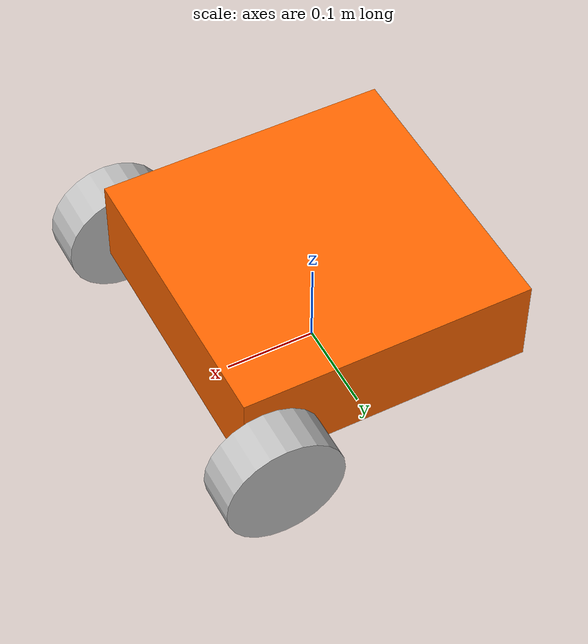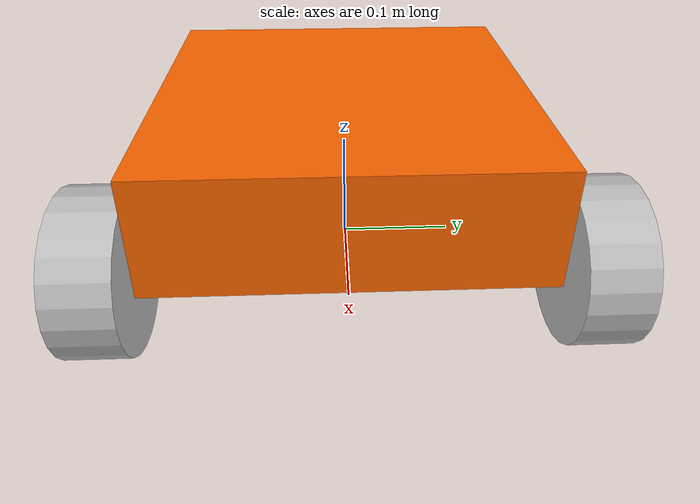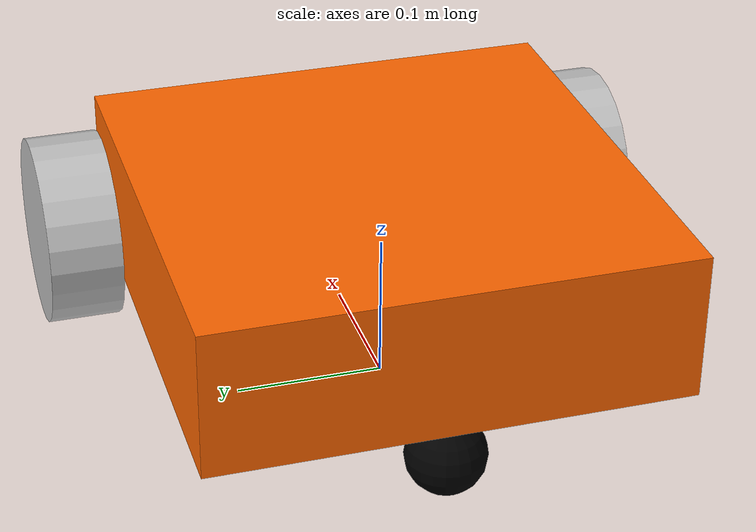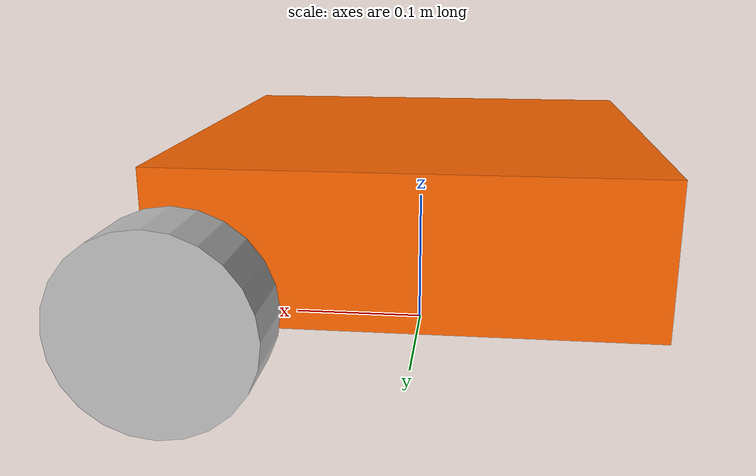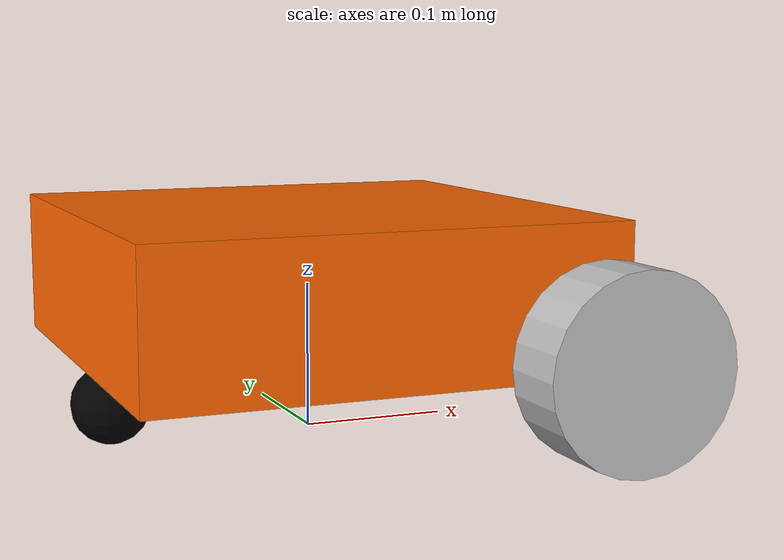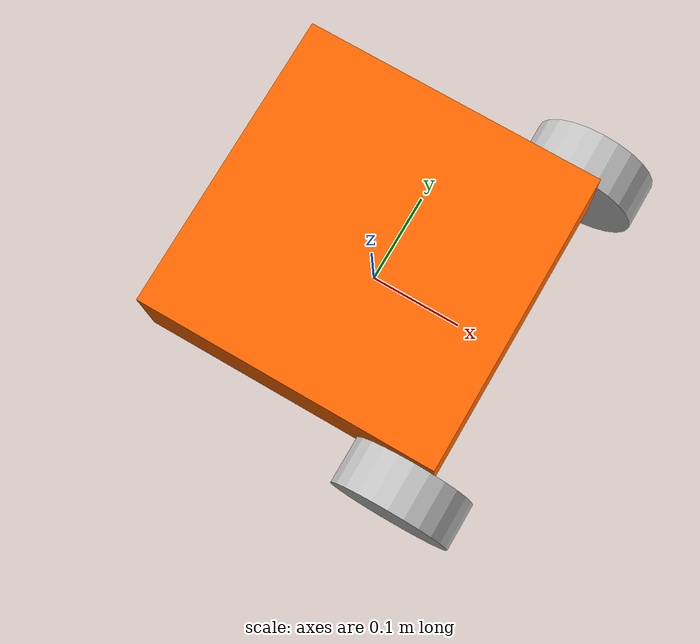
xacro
<?xml version="1.0"?>
<robot name="originbot"
    xmlns:xacro="http://www.ros.org/wiki/xacro">
    <!-- 大号机器人模型 -->
    <!-- PROPERTY LIST -->
    <xacro:property name="M_PI" value="3.1415926" />
    <xacro:property name="base_mass" value="2" />

    <xacro:property name="base_width" value="0.320" />
    <xacro:property name="base_length" value="0.320" />
    <xacro:property name="base_height" value="0.1" />

    <!-- 轮子 -->
    <xacro:property name="wheel_mass" value="0.4" />
    <xacro:property name="wheel_radius" value="0.065" />
    <xacro:property name="wheel_length" value="0.050" />

    <xacro:property name="wheel_joint_x" value="0.14" />
    <xacro:property name="wheel_separation" value="${base_width+wheel_length}" />

    <!-- 支撑轮 -->
    <xacro:property name="caster_mass" value="0.4" />
    <xacro:property name="caster_radius" value="0.0267" />
    <xacro:property name="caster_joint_x" value="0.14" />
    <xacro:property
        name="wheel_joint_z"
        value="${base_height/2 + caster_radius*2 - wheel_radius}" />

    <material name="yellow">
        <color rgba="1 0.4 0 1" />
    </material>
    <material name="black">
        <color rgba="0 0 0 0.95" />
    </material>
    <material name="gray">
        <color rgba="0.75 0.75 0.75 1" />
    </material>

    <!-- Macro for inertia matrix -->

    <!-- 球面惯性矩阵 -->
    <xacro:macro name="sphere_inertial_matrix" params="m r">
        <inertial>
            <mass value="${m}" />
            <inertia ixx="${2*m*r*r/5}" ixy="0" ixz="0" iyy="${2*m*r*r/5}" iyz="0"
                izz="${2*m*r*r/5}" />
        </inertial>
    </xacro:macro>

    <!-- 圆柱惯性矩阵 -->
    <xacro:macro name="cylinder_inertial_matrix" params="m r h">
        <inertial>
            <mass value="${m}" />
            <inertia ixx="${m*(3*r*r+h*h)/12}" ixy="0" ixz="0" iyy="${m*(3*r*r+h*h)/12}" iyz="0"
                izz="${m*r*r/2}" />
        </inertial>
    </xacro:macro>

    <!-- 方块惯性矩阵 -->
    <xacro:macro name="box_inertial_matrix" params="m l w h">
        <inertial>
            <mass value="${m}" />
            <inertia ixx="${m*(h*h + l*l)/12}" ixy="0" ixz="0" iyy="${m*(w*w + l*l)/12}" iyz="0"
                izz="${m*(w*w + h*h)/12}" />
        </inertial>
    </xacro:macro>

    <!-- Macro for robot 轮子 -->
    <xacro:macro name="wheel" params="prefix reflect">
        <joint name="${prefix}_wheel_joint" type="fixed">
            <origin xyz="${wheel_joint_x} ${reflect*wheel_separation/2} ${-wheel_joint_z}"
                rpy="0 0 0" />
            <parent link="base_link" />
            <child link="${prefix}_wheel_link" />
            <axis xyz="0 1 0" />
            <limit effort="10.0" velocity="20.0" />
            <dynamics damping="0.001" friction="0.0" />
        </joint>

        <link name="${prefix}_wheel_link">
            <visual>
                <origin xyz="0 0 0" rpy="${M_PI/2} 0 0" />
                <geometry>
                    <cylinder radius="${wheel_radius}" length="${wheel_length}" />
                </geometry>
                <material name="gray" />
            </visual>
            <collision>
                <origin xyz="0 0 0" rpy="${M_PI/2} 0 0" />
                <geometry>
                    <cylinder radius="${wheel_radius}" length="${wheel_length}" />
                </geometry>
            </collision>
            <!-- Cylinder axis is y after the visual/collision rotation. -->
            <inertial>
                <mass value="${wheel_mass}" />
                <inertia
                    ixx="${wheel_mass*(3*wheel_radius*wheel_radius
                        + wheel_length*wheel_length)/12}"
                    ixy="0"
                    ixz="0"
                    iyy="${wheel_mass*wheel_radius*wheel_radius/2}"
                    iyz="0"
                    izz="${wheel_mass*(3*wheel_radius*wheel_radius
                        + wheel_length*wheel_length)/12}" />
            </inertial>
        </link>

    </xacro:macro>

    <!-- Macro for robot 支撑轮 -->
    <xacro:macro name="caster" params="prefix reflect">
        <joint name="${prefix}_caster_joint" type="fixed">
            <origin xyz="${reflect*caster_joint_x} 0 ${-(base_height/2 + caster_radius)}"
                rpy="0 0 0" />
            <parent link="base_link" />
            <child link="${prefix}_caster_link" />
        </joint>

        <link name="${prefix}_caster_link">
            <visual>
                <origin xyz="0 0 0" rpy="0 0 0" />
                <geometry>
                    <sphere radius="${caster_radius}" />
                </geometry>
                <material name="black" />
            </visual>
            <collision>
                <origin xyz="0 0 0" rpy="0 0 0" />
                <geometry>
                    <sphere radius="${caster_radius}" />
                </geometry>
            </collision>
            <xacro:sphere_inertial_matrix m="${caster_mass}" r="${caster_radius}" />
        </link>

    </xacro:macro>

    <link name="base_footprint">
        <visual>
            <origin xyz="0 0 0" rpy="0 0 0" />
            <geometry>
                <box size="0.001 0.001 0.001" />
            </geometry>
        </visual>
    </link>

    <joint name="base_footprint_joint" type="fixed">
        <origin xyz="0 0 ${base_height/2 + caster_radius*2}" rpy="0 0 0" />
        <parent link="base_footprint" />
        <child link="base_link" />
    </joint>

    <link name="base_link">
        <visual>
            <origin xyz=" 0 0 0" rpy="0 0 0" />
            <geometry>
                <box size="${base_length} ${base_width} ${base_height}" />
            </geometry>
            <material name="yellow" />
        </visual>
        <collision>
            <origin xyz=" 0 0 0" rpy="0 0 0" />
            <geometry>
                <box size="${base_length} ${base_width} ${base_height}" />
            </geometry>
        </collision>
        <xacro:box_inertial_matrix m="${base_mass}" l="${base_length}" w="${base_width}"
            h="${base_height}" />
    </link>

    <xacro:wheel prefix="left" reflect="1" />
    <xacro:wheel prefix="right" reflect="-1" />

    <xacro:caster prefix="back" reflect="-1" />

</robot>
